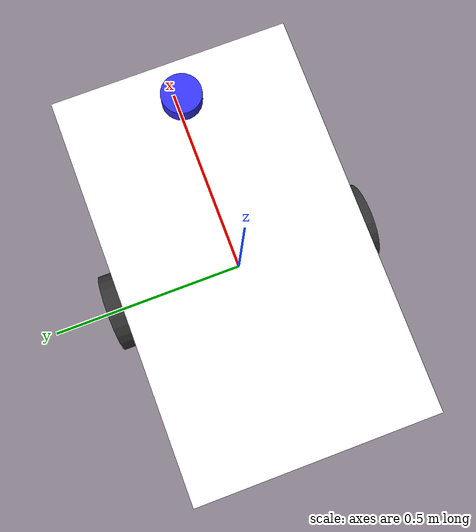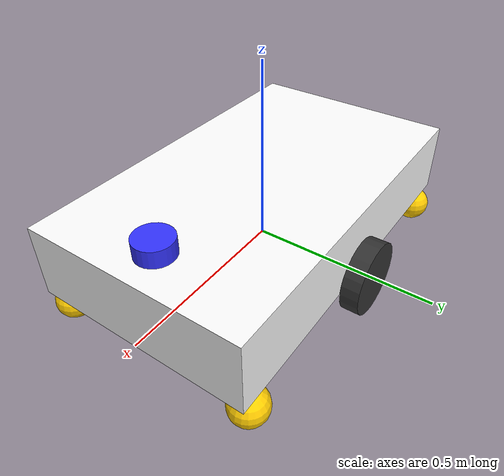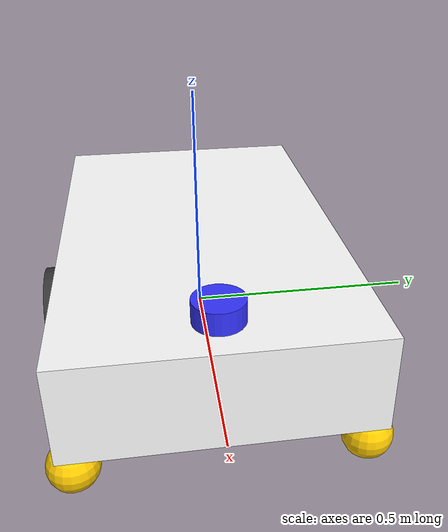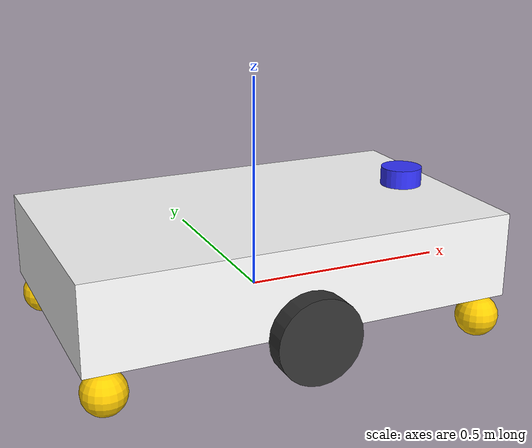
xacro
<?xml version="1.0"?>
<robot xmlns:xacro="http://www.ros.org/wiki/xacro">

    <xacro:include filename="inertial.xacro" />

    <material name="white">
        <color rgba="1 1 1 1" />
    </material>
    <material name="orange">
        <color rgba="1 0.3 0.1 1"/>
    </material>
    <material name="blue">
        <color rgba="0.2 0.2 1 1"/>
    </material>
    <material name="black">
        <color rgba="0 0 0 1"/>
    </material>
    <material name="dark_gray">
        <color rgba="0.2 0.2 0.2 1.0"/>
    </material>
    <material name="light_gray">
        <color rgba="0.7 0.7 0.7 1.0"/>
    </material>
    <material name="silver">
        <color rgba="0.8 0.8 0.8 1.0"/>
    </material>
    <material name="yellow">
        <color rgba="1.0 0.8 0.0 1.0"/>
    </material>

    <!-- BASE LINK -->

    <link name="base_link">

    </link>

    <!-- CHASSIS LINK -->

    <joint name="chassis_joint" type="fixed">
        <parent link="base_link"/>
        <child link="chassis"/>
        <origin xyz="-0.499 0 0"/>
    </joint>

    <link name="chassis">
        <visual>
            <origin xyz="0.5 0 0.1"/>
            <geometry>
                <box size="1 0.6 0.2"/>
            </geometry>
            <material name="white"/>
        </visual>
        <collision>
            <origin xyz="0.5 0 0.1"/>
            <geometry>
                <box size="1 0.6 0.2"/>
            </geometry>
            <material name="white"/>
        </collision>
        <xacro:inertial_box mass="0.1" x="1.0" y="0.6" z="0.2">
            <origin xyz="0.5 0 0.1" rpy="0 0 0"/>
        </xacro:inertial_box>

    </link>

    <gazebo reference="chassis">
        <material>Gazebo/White</material>
    </gazebo>

    <!-- LEFT WHEEL LINK -->

    <joint name="left_joint" type="continuous">
        <parent link="base_link"/>
        <child link="left_wheel"/>
        <origin xyz="0 0.325 0" rpy="1.57079632679 0 0"/>
        <axis xyz="0 0 1"/>
    </joint>

    <link name="left_wheel">

        <visual>
            <geometry>
                <cylinder radius="0.1" length="0.05"/>
            </geometry>
            <material name="dark_gray"/>
        </visual>
        <collision>
            <geometry>
                <cylinder radius="0.1" length="0.05"/>
            </geometry>
            <material name="dark_gray"/>
        </collision>
        <xacro:inertial_cylinder mass="0.1" length="0.05" radius="0.1">
            <origin xyz="0 0 0" rpy="0 0 0"/>
        </xacro:inertial_cylinder>
    </link>

    <gazebo reference="left_wheel">
        <material>Gazebo/dark_gray</material>
    </gazebo>

    <!-- RIGHT WHEEL LINK -->

    <joint name="right_joint" type="continuous">
        <parent link="base_link"/>
        <child link="right_wheel"/>
        <origin xyz="0 -0.325 0" rpy="1.57079632679 0 0"/>
        <axis xyz="0 0 1"/>
    </joint>

    <link name="right_wheel">
        <visual>
            <geometry>
                <cylinder radius="0.1" length="0.05"/>
            </geometry>
            <material name="dark_gray"/>
        </visual>
        <collision>
            <geometry>
                <cylinder radius="0.1" length="0.05"/>
            </geometry>
            <material name="dark_gray"/>
        </collision>
        <xacro:inertial_cylinder mass="0.1" length="0.05" radius="0.1">
            <origin xyz="0 0 0" rpy="0 0 0"/>
        </xacro:inertial_cylinder>
    </link>

    <gazebo reference="right_wheel">
        <material>Gazebo/dark_gray</material>
    </gazebo>

    <!-- CASTER WHEEL LINK -->

    <joint name="front_left_caster_joint" type="fixed">
        <parent link="base_link"/>
        <child link="front_left_caster"/>
        <origin xyz="0.45 0.275 -0.05" rpy="0 0 0"/>
    </joint>

    <link name="front_left_caster">
        <visual>
            <geometry>
                <sphere radius="0.05"/>
            </geometry>
            <material name="yellow"/>
        </visual>
        <collision>
            <geometry>
                <sphere radius="0.05"/>
            </geometry>
            <material name="yellow"/>
        </collision>
        <xacro:inertial_sphere mass="0.1" radius="0.05">
            <origin xyz="0 0 0" rpy="0 0 0"/>
        </xacro:inertial_sphere>
    </link>

    <gazebo reference="front_right_caster">
        <material>Gazebo/Yellow</material>
    </gazebo>

    <joint name="front_right_caster_joint" type="fixed">
        <parent link="base_link"/>
        <child link="front_right_caster"/>
        <origin xyz="0.45 -0.275 -0.05" rpy="0 0 0"/>
    </joint>

    <link name="front_right_caster">
        <visual>
            <geometry>
                <sphere radius="0.05"/>
            </geometry>
            <material name="yellow"/>
        </visual>
        <collision>
            <geometry>
                <sphere radius="0.05"/>
            </geometry>
            <material name="yellow"/>
        </collision>
        <xacro:inertial_sphere mass="0.1" radius="0.05">
            <origin xyz="0 0 0" rpy="0 0 0"/>
        </xacro:inertial_sphere>
    </link>

    <gazebo reference="front_right_caster">
        <material>Gazebo/Yellow</material>
    </gazebo>

    <joint name="rear_right_caster_joint" type="fixed">
        <parent link="base_link"/>
        <child link="rear_right_caster"/>
        <origin xyz="-0.45 -0.275 -0.05" rpy="0 0 0"/>
    </joint>

    <link name="rear_right_caster">
        <visual>
            <geometry>
                <sphere radius="0.05"/>
            </geometry>
            <material name="yellow"/>
        </visual>
        <collision>
            <geometry>
                <sphere radius="0.05"/>
            </geometry>
            <material name="yellow"/>
        </collision>
        <xacro:inertial_sphere mass="0.1" radius="0.05">
            <origin xyz="0 0 0" rpy="0 0 0"/>
        </xacro:inertial_sphere>
    </link>

    <gazebo reference="rear_right_caster">
        <material>Gazebo/Yellow</material>
    </gazebo>

    <joint name="rear_left_caster_joint" type="fixed">
        <parent link="base_link"/>
        <child link="rear_left_caster"/>
        <origin xyz="-0.45 0.275 -0.05" rpy="0 0 0"/>
    </joint>

    <link name="rear_left_caster">
        <visual>
            <geometry>
                <sphere radius="0.05"/>
            </geometry>
            <material name="yellow"/>
        </visual>
        <collision>
            <geometry>
                <sphere radius="0.05"/>
            </geometry>
            <material name="yellow"/>
        </collision>
        <xacro:inertial_sphere mass="0.1" radius="0.05">
            <origin xyz="0 0 0" rpy="0 0 0"/>
        </xacro:inertial_sphere>
    </link>

    <gazebo reference="rear_left_caster">
        <material>Gazebo/Yellow</material>
    </gazebo>

    <!-- LIDAR LINK -->

    <link name="lidar_link">
        <visual>
            <geometry>
                <cylinder radius="0.05" length="0.05"/>
            </geometry>
            <material name="blue"/>
        </visual>
        <collision>
            <geometry>
                <cylinder radius="0.05" length="0.05"/>
            </geometry>
            <material name="blue"/>
        </collision>
    </link>

    <joint name="lidar_joint" type="fixed">
        <parent link="base_link"/>
        <child link="lidar_link"/>
        <origin xyz="0.4 0 0.22" rpy="0 0 0"/>
    </joint>

    <gazebo reference="lidar_link">
        <material>Gazebo/Blue</material>
    </gazebo>
</robot>
